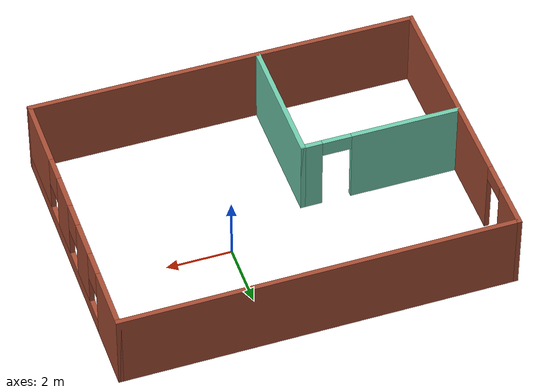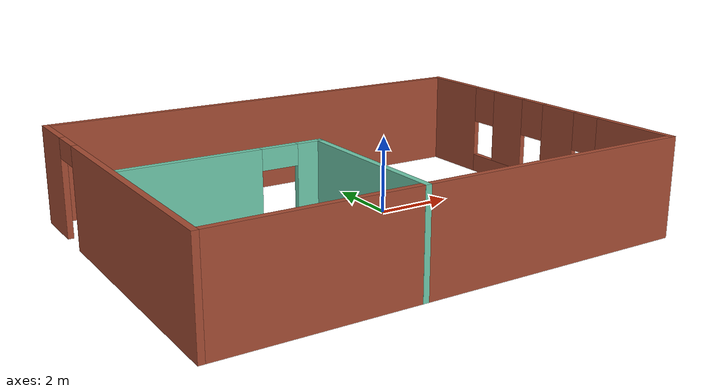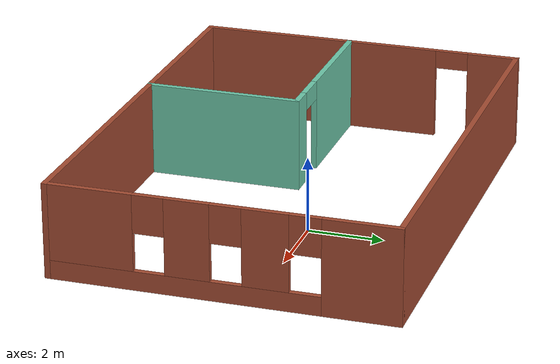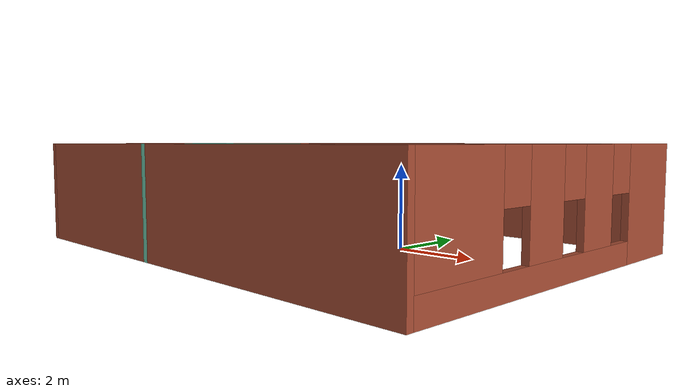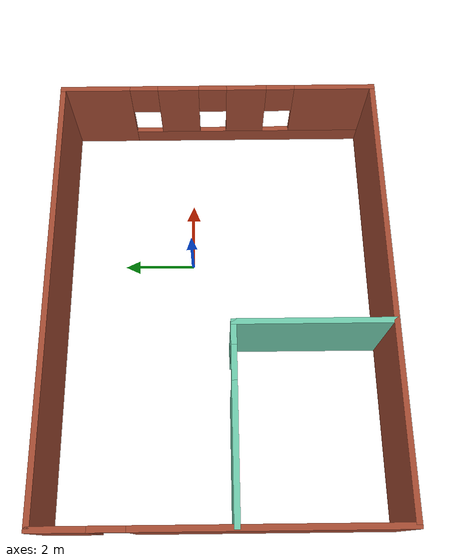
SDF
<?xml version='1.0'?>
<sdf version='1.6'>
  <model name='fourwalledbuilding'>
    <pose frame=''>-1.454 -0.76184 0 0 -0 0</pose>
    <link name='Wall_10'>
      <pose frame=''>-5.975 0.00084 0 0 -0 1.5708</pose>
      <visual name='Wall_10_Visual_0'>
        <pose frame=''>-1.16203 0 1.25 0 -0 0</pose>
        <geometry>
          <box>
            <size>6.67594 0.15 2.5</size>
          </box>
        </geometry>
        <material>
          <script>
            <uri>file://media/materials/scripts/gazebo.material</uri>
            <name>Gazebo/Bricks</name>
          </script>
          <ambient>0.921569 0.807843 0.615686 1</ambient>
        </material>
        <meta>
          <layer>0</layer>
        </meta>
      </visual>
      <collision name='Wall_10_Collision_0'>
        <geometry>
          <box>
            <size>6.67594 0.15 2.5</size>
          </box>
        </geometry>
        <pose frame=''>-1.16203 0 1.25 0 -0 0</pose>
      </collision>
      <visual name='Wall_10_Visual_1'>
        <pose frame=''>3.78797 0 1.25 0 -0 0</pose>
        <geometry>
          <box>
            <size>1.42406 0.15 2.5</size>
          </box>
        </geometry>
        <material>
          <script>
            <uri>file://media/materials/scripts/gazebo.material</uri>
            <name>Gazebo/Bricks</name>
          </script>
          <ambient>0.921569 0.807843 0.615686 1</ambient>
        </material>
        <meta>
          <layer>0</layer>
        </meta>
      </visual>
      <collision name='Wall_10_Collision_1'>
        <geometry>
          <box>
            <size>1.42406 0.15 2.5</size>
          </box>
        </geometry>
        <pose frame=''>3.78797 0 1.25 0 -0 0</pose>
      </collision>
      <visual name='Wall_10_Visual_2'>
        <pose frame=''>2.62594 0 2.25 0 -0 0</pose>
        <geometry>
          <box>
            <size>0.9 0.15 0.5</size>
          </box>
        </geometry>
        <material>
          <script>
            <uri>file://media/materials/scripts/gazebo.material</uri>
            <name>Gazebo/Bricks</name>
          </script>
          <ambient>0.921569 0.807843 0.615686 1</ambient>
        </material>
        <meta>
          <layer>0</layer>
        </meta>
      </visual>
      <collision name='Wall_10_Collision_2'>
        <geometry>
          <box>
            <size>0.9 0.15 0.5</size>
          </box>
        </geometry>
        <pose frame=''>2.62594 0 2.25 0 -0 0</pose>
      </collision>
    </link>
    <link name='Wall_12'>
      <pose frame=''>-3.51992 -0.32584 0 0 -0 0</pose>
      <visual name='Wall_12_Visual_0'>
        <pose frame=''>-0.785586 0 1.25 0 -0 0</pose>
        <geometry>
          <box>
            <size>3.42883 0.15 2.5</size>
          </box>
        </geometry>
        <material>
          <script>
            <uri>file://media/materials/scripts/gazebo.material</uri>
            <name>Gazebo/Grey</name>
          </script>
          <ambient>0.435294 0.796078 0.67451 1</ambient>
        </material>
        <meta>
          <layer>0</layer>
        </meta>
      </visual>
      <collision name='Wall_12_Collision_0'>
        <geometry>
          <box>
            <size>3.42883 0.15 2.5</size>
          </box>
        </geometry>
        <pose frame=''>-0.785586 0 1.25 0 -0 0</pose>
      </collision>
      <visual name='Wall_12_Visual_1'>
        <pose frame=''>2.16441 0 1.25 0 -0 0</pose>
        <geometry>
          <box>
            <size>0.671172 0.15 2.5</size>
          </box>
        </geometry>
        <material>
          <script>
            <uri>file://media/materials/scripts/gazebo.material</uri>
            <name>Gazebo/Grey</name>
          </script>
          <ambient>0.435294 0.796078 0.67451 1</ambient>
        </material>
        <meta>
          <layer>0</layer>
        </meta>
      </visual>
      <collision name='Wall_12_Collision_1'>
        <geometry>
          <box>
            <size>0.671172 0.15 2.5</size>
          </box>
        </geometry>
        <pose frame=''>2.16441 0 1.25 0 -0 0</pose>
      </collision>
      <visual name='Wall_12_Visual_2'>
        <pose frame=''>1.37883 0 2.25 0 -0 0</pose>
        <geometry>
          <box>
            <size>0.9 0.15 0.5</size>
          </box>
        </geometry>
        <material>
          <script>
            <uri>file://media/materials/scripts/gazebo.material</uri>
            <name>Gazebo/Grey</name>
          </script>
          <ambient>0.435294 0.796078 0.67451 1</ambient>
        </material>
        <meta>
          <layer>0</layer>
        </meta>
      </visual>
      <collision name='Wall_12_Collision_2'>
        <geometry>
          <box>
            <size>0.9 0.15 0.5</size>
          </box>
        </geometry>
        <pose frame=''>1.37883 0 2.25 0 -0 0</pose>
      </collision>
    </link>
    <link name='Wall_13'>
      <collision name='Wall_13_Collision'>
        <geometry>
          <box>
            <size>4.25 0.15 2.5</size>
          </box>
        </geometry>
        <pose frame=''>0 0 1.25 0 -0 0</pose>
      </collision>
      <visual name='Wall_13_Visual'>
        <pose frame=''>0 0 1.25 0 -0 0</pose>
        <geometry>
          <box>
            <size>4.25 0.15 2.5</size>
          </box>
        </geometry>
        <material>
          <script>
            <uri>file://media/materials/scripts/gazebo.material</uri>
            <name>Gazebo/Grey</name>
          </script>
          <ambient>0.435294 0.796078 0.67451 1</ambient>
        </material>
        <meta>
          <layer>0</layer>
        </meta>
      </visual>
      <pose frame=''>-1.09492 -2.37584 0 0 0 -1.5708</pose>
    </link>
    <link name='Wall_6'>
      <collision name='Wall_6_Collision'>
        <geometry>
          <box>
            <size>12 0.15 2.5</size>
          </box>
        </geometry>
        <pose frame=''>0 0 1.25 0 -0 0</pose>
      </collision>
      <visual name='Wall_6_Visual'>
        <pose frame=''>0 0 1.25 0 -0 0</pose>
        <geometry>
          <box>
            <size>12 0.15 2.5</size>
          </box>
        </geometry>
        <material>
          <script>
            <uri>file://media/materials/scripts/gazebo.material</uri>
            <name>Gazebo/Bricks</name>
          </script>
          <ambient>0.921569 0.807843 0.615686 1</ambient>
        </material>
        <meta>
          <layer>0</layer>
        </meta>
      </visual>
      <pose frame=''>0.05 4.42584 0 0 -0 0</pose>
    </link>
    <link name='Wall_7'>
      <pose frame=''>5.975 0.00084 0 0 0 -1.5708</pose>
      <visual name='Wall_7_Visual_0'>
        <pose frame=''>-3.51027 0 1.25 0 -0 0</pose>
        <geometry>
          <box>
            <size>1.97946 0.15 2.5</size>
          </box>
        </geometry>
        <material>
          <script>
            <uri>file://media/materials/scripts/gazebo.material</uri>
            <name>Gazebo/Bricks</name>
          </script>
          <ambient>0.921569 0.807843 0.615686 1</ambient>
        </material>
        <meta>
          <layer>0</layer>
        </meta>
      </visual>
      <collision name='Wall_7_Collision_0'>
        <geometry>
          <box>
            <size>1.97946 0.15 2.5</size>
          </box>
        </geometry>
        <pose frame=''>-3.51027 0 1.25 0 -0 0</pose>
      </collision>
      <visual name='Wall_7_Visual_1'>
        <pose frame=''>0.989731 0 0.25 0 -0 0</pose>
        <geometry>
          <box>
            <size>7.02054 0.15 0.5</size>
          </box>
        </geometry>
        <material>
          <script>
            <uri>file://media/materials/scripts/gazebo.material</uri>
            <name>Gazebo/Bricks</name>
          </script>
          <ambient>0.921569 0.807843 0.615686 1</ambient>
        </material>
        <meta>
          <layer>0</layer>
        </meta>
      </visual>
      <collision name='Wall_7_Collision_1'>
        <geometry>
          <box>
            <size>7.02054 0.15 0.5</size>
          </box>
        </geometry>
        <pose frame=''>0.989731 0 0.25 0 -0 0</pose>
      </collision>
      <visual name='Wall_7_Visual_2'>
        <pose frame=''>-1.13633 0 1.5 0 -0 0</pose>
        <geometry>
          <box>
            <size>1.16841 0.15 2</size>
          </box>
        </geometry>
        <material>
          <script>
            <uri>file://media/materials/scripts/gazebo.material</uri>
            <name>Gazebo/Bricks</name>
          </script>
          <ambient>0.921569 0.807843 0.615686 1</ambient>
        </material>
        <meta>
          <layer>0</layer>
        </meta>
      </visual>
      <collision name='Wall_7_Collision_2'>
        <geometry>
          <box>
            <size>1.16841 0.15 2</size>
          </box>
        </geometry>
        <pose frame=''>-1.13633 0 1.5 0 -0 0</pose>
      </collision>
      <visual name='Wall_7_Visual_3'>
        <pose frame=''>0.818784 0 1.5 0 -0 0</pose>
        <geometry>
          <box>
            <size>1.14182 0.15 2</size>
          </box>
        </geometry>
        <material>
          <script>
            <uri>file://media/materials/scripts/gazebo.material</uri>
            <name>Gazebo/Bricks</name>
          </script>
          <ambient>0.921569 0.807843 0.615686 1</ambient>
        </material>
        <meta>
          <layer>0</layer>
        </meta>
      </visual>
      <collision name='Wall_7_Collision_3'>
        <geometry>
          <box>
            <size>1.14182 0.15 2</size>
          </box>
        </geometry>
        <pose frame=''>0.818784 0 1.5 0 -0 0</pose>
      </collision>
      <visual name='Wall_7_Visual_4'>
        <pose frame=''>3.34485 0 1.5 0 -0 0</pose>
        <geometry>
          <box>
            <size>2.31031 0.15 2</size>
          </box>
        </geometry>
        <material>
          <script>
            <uri>file://media/materials/scripts/gazebo.material</uri>
            <name>Gazebo/Bricks</name>
          </script>
          <ambient>0.921569 0.807843 0.615686 1</ambient>
        </material>
        <meta>
          <layer>0</layer>
        </meta>
      </visual>
      <collision name='Wall_7_Collision_4'>
        <geometry>
          <box>
            <size>2.31031 0.15 2</size>
          </box>
        </geometry>
        <pose frame=''>3.34485 0 1.5 0 -0 0</pose>
      </collision>
      <visual name='Wall_7_Visual_5'>
        <pose frame=''>-2.12054 0 2 0 -0 0</pose>
        <geometry>
          <box>
            <size>0.8 0.15 1</size>
          </box>
        </geometry>
        <material>
          <script>
            <uri>file://media/materials/scripts/gazebo.material</uri>
            <name>Gazebo/Bricks</name>
          </script>
          <ambient>0.921569 0.807843 0.615686 1</ambient>
        </material>
        <meta>
          <layer>0</layer>
        </meta>
      </visual>
      <collision name='Wall_7_Collision_5'>
        <geometry>
          <box>
            <size>0.8 0.15 1</size>
          </box>
        </geometry>
        <pose frame=''>-2.12054 0 2 0 -0 0</pose>
      </collision>
      <visual name='Wall_7_Visual_6'>
        <pose frame=''>-0.152123 0 2 0 -0 0</pose>
        <geometry>
          <box>
            <size>0.8 0.15 1</size>
          </box>
        </geometry>
        <material>
          <script>
            <uri>file://media/materials/scripts/gazebo.material</uri>
            <name>Gazebo/Bricks</name>
          </script>
          <ambient>0.921569 0.807843 0.615686 1</ambient>
        </material>
        <meta>
          <layer>0</layer>
        </meta>
      </visual>
      <collision name='Wall_7_Collision_6'>
        <geometry>
          <box>
            <size>0.8 0.15 1</size>
          </box>
        </geometry>
        <pose frame=''>-0.152123 0 2 0 -0 0</pose>
      </collision>
      <visual name='Wall_7_Visual_7'>
        <pose frame=''>1.78969 0 2 0 -0 0</pose>
        <geometry>
          <box>
            <size>0.8 0.15 1</size>
          </box>
        </geometry>
        <material>
          <script>
            <uri>file://media/materials/scripts/gazebo.material</uri>
            <name>Gazebo/Bricks</name>
          </script>
          <ambient>0.921569 0.807843 0.615686 1</ambient>
        </material>
        <meta>
          <layer>0</layer>
        </meta>
      </visual>
      <collision name='Wall_7_Collision_7'>
        <geometry>
          <box>
            <size>0.8 0.15 1</size>
          </box>
        </geometry>
        <pose frame=''>1.78969 0 2 0 -0 0</pose>
      </collision>
    </link>
    <link name='Wall_8'>
      <collision name='Wall_8_Collision'>
        <geometry>
          <box>
            <size>12 0.15 2.5</size>
          </box>
        </geometry>
        <pose frame=''>0 0 1.25 0 -0 0</pose>
      </collision>
      <visual name='Wall_8_Visual'>
        <pose frame=''>0 0 1.25 0 -0 0</pose>
        <geometry>
          <box>
            <size>12 0.15 2.5</size>
          </box>
        </geometry>
        <material>
          <script>
            <uri>file://media/materials/scripts/gazebo.material</uri>
            <name>Gazebo/Bricks</name>
          </script>
          <ambient>0.921569 0.807843 0.615686 1</ambient>
        </material>
        <meta>
          <layer>0</layer>
        </meta>
      </visual>
      <pose frame=''>0.05 -4.42416 0 0 -0 3.14159</pose>
    </link>
    <static>1</static>
  </model>
</sdf>
